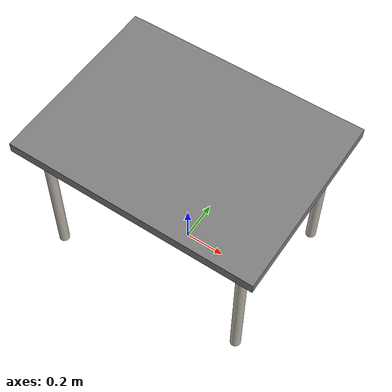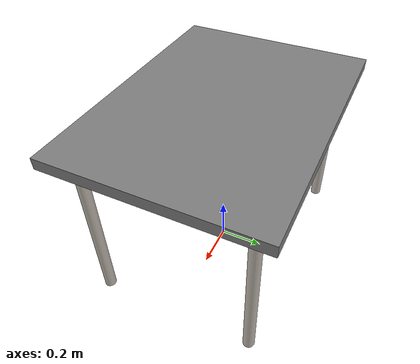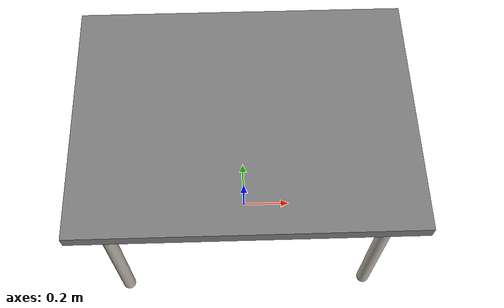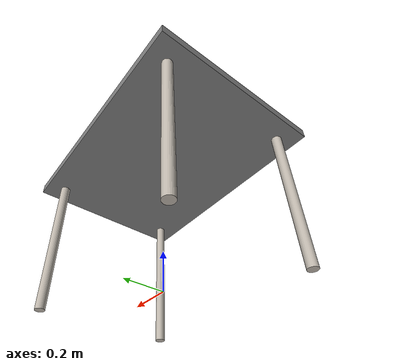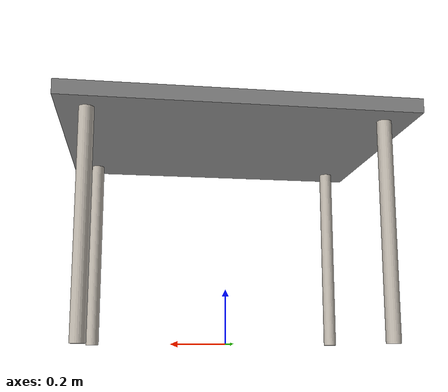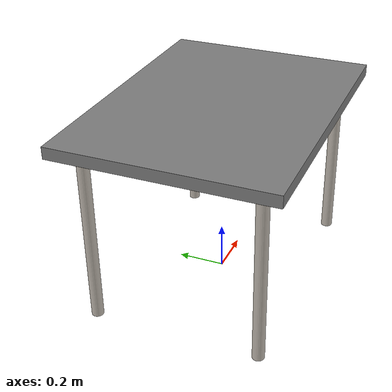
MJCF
<mujoco model="robosuite_table_only">
  <compiler angle="radian" autolimits="true"/>

  <asset>
    <material name="table_silver" rgba="0.75 0.75 0.72 1" reflectance="0.15" shininess="0.35" specular="0.5"/>

    <texture file="configuration/materials/steel-brushed.png" type="cube" name="tex-steel-brushed"/>
    <material name="table_legs_metal" reflectance="0.8" shininess="0.8" texrepeat="1 1" texture="tex-steel-brushed"/>

    <texture name="textable" builtin="flat" height="512" width="512" rgb1="0.5 0.5 0.5" rgb2="0.5 0.5 0.5"/>
    <material name="table_mat" texture="textable"/>
  </asset>

  <worldbody>
    <body name="table" pos="0 0 0.775">
      <geom pos="0 0 0" size="0.6 0.45 0.025" type="box" group="0" name="table_collision" friction="1 0.005 0.0001"/>
      <geom pos="0 0 0" size="0.6 0.45 0.025" type="box" conaffinity="0" contype="0" group="1" name="table_visual" material="table_silver"/>
      <site pos="0 0 0.025" name="table_top" size="0.001 0.001 0.001" rgba="0 0 0 0"/>

      <geom pos="0.5 0.35 -0.3875" size="0.025 0.3875" type="cylinder" conaffinity="0" contype="0" group="1" name="table_leg1_visual" material="table_legs_metal"/>
      <geom pos="-0.5 0.35 -0.3875" size="0.025 0.3875" type="cylinder" conaffinity="0" contype="0" group="1" name="table_leg2_visual" material="table_legs_metal"/>
      <geom pos="-0.5 -0.35 -0.3875" size="0.025 0.3875" type="cylinder" conaffinity="0" contype="0" group="1" name="table_leg3_visual" material="table_legs_metal"/>
      <geom pos="0.5 -0.35 -0.3875" size="0.025 0.3875" type="cylinder" conaffinity="0" contype="0" group="1" name="table_leg4_visual" material="table_legs_metal"/>
    </body>

    <body name="external_cam" pos="0.5170 0.3270 1.3640" quat="0.3604 0.2030 0.5000 0.7609"/>
  </worldbody>
</mujoco>
